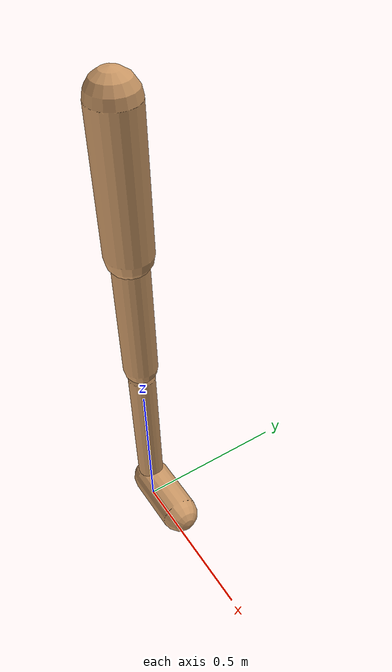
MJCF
<mujoco model="walker2d">
  <compiler angle="degree" coordinate="global" inertiafromgeom="true" />
  <default>
    <joint armature="0.01" damping=".1" limited="true" />
    <geom conaffinity="0" condim="3" contype="1" density="1000" friction="0.8 .1 .1" rgba="0.8 0.6 .4 1" />
  </default>
  <option integrator="RK4" timestep="0.002" />
  <worldbody>

    <body name="torso" pos="0 0 -0.09763855924399044">
      <joint armature="0" axis="1 0 0" damping="0" limited="false" name="ignorex" pos="0 0 0" stiffness="0" type="slide" />
      <joint armature="0" axis="0 0 1" damping="0" limited="false" name="ignorez" pos="0 0 0" ref="1.25" stiffness="0" type="slide" />
      <joint armature="0" axis="0 1 0" damping="0" limited="false" name="ignorey" pos="0 0 0" stiffness="0" type="hinge" />
      <geom fromto="0 0 1.45 0 0 1.05" name="torso_geom" size="0.06752452700438025" type="capsule" />
      <body name="thigh">
        <joint axis="0 -1 0" name="thigh_joint" pos="0 0 1.05" range="-150 0" type="hinge" />
        <geom fromto="0.0 0.0 1.05 0.0 0.0 0.6462498438524165" name="thigh_geom" size="0.051927877322900697" type="capsule" />
        <body name="leg" pos="0.0 0.0 0.04624984385241648">
          <joint axis="0 -1 0" name="leg_joint" pos="0 0 0.6" range="-150 0" type="hinge" />
          <geom fromto="0.0 0.0 0.6 0.0 0.0 0.15138871539157392" name="leg_geom" size="0.04154230185832056" type="capsule" />
          <body name="foot" pos="0.0 0.0 0.051388715391573914">
            <joint axis="0 -1 0" name="foot_joint" pos="0 0 0.1" range="-45 45" type="hinge" />
            <geom fromto="0.0 0.0 0.10000000000000002 0.18551132378510846 0.0 0.10000000000000002" name="foot_geom" size="0.06031657376650166" type="capsule" />
          </body>
        </body>
      </body>

      <body name="thigh_left">
        <joint axis="0 -1 0" name="thigh_left_joint" pos="0 0 1.05" range="-150 0" type="hinge" />
        <geom fromto="0.0 0.0 1.05 0.0 0.0 0.6462498438524165" name="thigh_left_geom" rgba=".7 .3 .6 1" size="0.051927877322900697" type="capsule" />
        <body name="leg_left" pos="0.0 0.0 0.04624984385241648">
          <joint axis="0 -1 0" name="leg_left_joint" pos="0 0 0.6" range="-150 0" type="hinge" />
          <geom fromto="0.0 0.0 0.6 0.0 0.0 0.15138871539157392" name="leg_left_geom" rgba=".7 .3 .6 1" size="0.04154230185832056" type="capsule" />
          <body name="foot_left" pos="0.0 0.0 0.051388715391573914">
            <joint axis="0 -1 0" name="foot_left_joint" pos="0 0 0.1" range="-45 45" type="hinge" />
            <geom fromto="0.0 0.0 0.10000000000000002 0.18551132378510846 0.0 0.10000000000000002" name="foot_left_geom" rgba=".7 .3 .6 1" size="0.06031657376650166" type="capsule" />
          </body>
        </body>
      </body>
    </body>
  </worldbody>
  <actuator>

    <motor ctrllimited="true" ctrlrange="-1.0 1.0" gear="100" joint="thigh_joint" />
    <motor ctrllimited="true" ctrlrange="-1.0 1.0" gear="100" joint="leg_joint" />
    <motor ctrllimited="true" ctrlrange="-1.0 1.0" gear="100" joint="foot_joint" />
    <motor ctrllimited="true" ctrlrange="-1.0 1.0" gear="100" joint="thigh_left_joint" />
    <motor ctrllimited="true" ctrlrange="-1.0 1.0" gear="100" joint="leg_left_joint" />
    <motor ctrllimited="true" ctrlrange="-1.0 1.0" gear="100" joint="foot_left_joint" />

  </actuator>
</mujoco>
